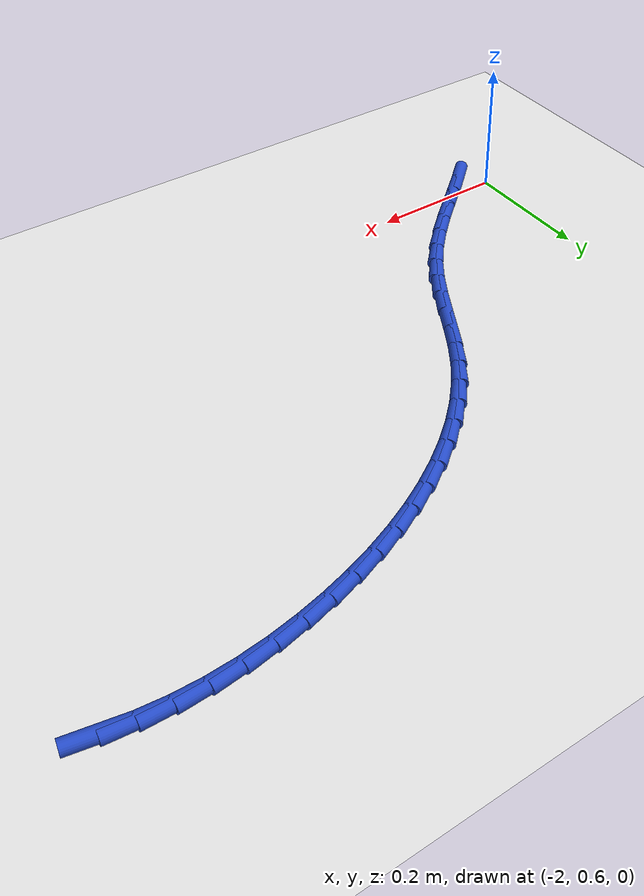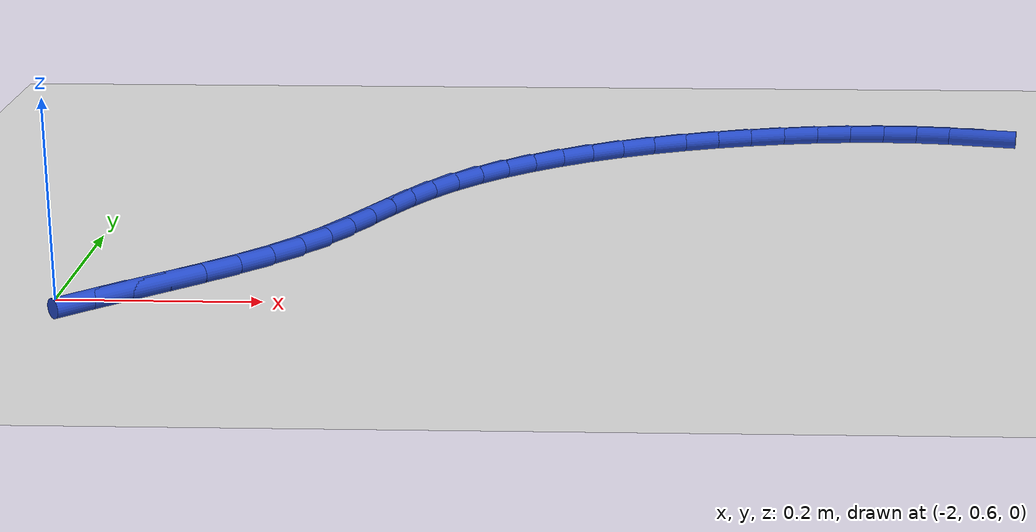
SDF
<sdf version="1.6">
 <world name="default">
  <model name="ground_plane">
   <static>1</static>
   <link name="link">
    <collision name="collision">
     <geometry><plane><normal>0 0 1</normal><size>100 100</size></plane></geometry>
     <surface><friction><ode><mu>100</mu><mu2>50</mu2></ode></friction></surface>
    </collision>
    <visual name="visual">
     <cast_shadows>0</cast_shadows>
     <geometry><plane><normal>0 0 1</normal><size>100 100</size></plane></geometry>
     <material>
      <script><uri>file://media/materials/scripts/gazebo.material</uri><name>Gazebo/WhiteGlow</name></script>
     </material>
    </visual>
   </link>
  </model>
  <model name="line">
   <link name="link_43">
    <pose>-1.0375401888467142 1.17692421562285 0.01 0 1.57 -0.19926425194213804</pose>
    <collision name="collision">
     <geometry><cylinder><radius>0.01</radius><length>0.08</length></cylinder></geometry>
    </collision>
    <visual name="visual">
     <material>
      <script><name>Gazebo/Blue</name><uri>file://media/materials/scripts/gazebo.material</uri></script>
     </material>
     <geometry><cylinder><radius>0.01</radius><length>0.08</length></cylinder></geometry>
    </visual>
   </link>
   <link name="link_44">
    <pose>-1.075025621205614 1.1844941800970346 0.01 0 1.57 -0.11313000391877812</pose>
    <collision name="collision">
     <geometry><cylinder><radius>0.01</radius><length>0.08</length></cylinder></geometry>
    </collision>
    <visual name="visual">
     <material>
      <script><name>Gazebo/Blue</name><uri>file://media/materials/scripts/gazebo.material</uri></script>
     </material>
     <geometry><cylinder><radius>0.01</radius><length>0.08</length></cylinder></geometry>
    </visual>
   </link>
   <link name="link_45">
    <pose>-1.1136404835672107 1.1888814121298201 0.01 0 1.57 -0.035319230790393445</pose>
    <collision name="collision">
     <geometry><cylinder><radius>0.01</radius><length>0.08</length></cylinder></geometry>
    </collision>
    <visual name="visual">
     <material>
      <script><name>Gazebo/Blue</name><uri>file://media/materials/scripts/gazebo.material</uri></script>
     </material>
     <geometry><cylinder><radius>0.01</radius><length>0.08</length></cylinder></geometry>
    </visual>
   </link>
   <link name="link_46">
    <pose>-1.1530976726064388 1.1902755894653265 0.01 0 1.57 0.035204510748973315</pose>
    <collision name="collision">
     <geometry><cylinder><radius>0.01</radius><length>0.08</length></cylinder></geometry>
    </collision>
    <visual name="visual">
     <material>
      <script><name>Gazebo/Blue</name><uri>file://media/materials/scripts/gazebo.material</uri></script>
     </material>
     <geometry><cylinder><radius>0.01</radius><length>0.08</length></cylinder></geometry>
    </visual>
   </link>
   <link name="link_47">
    <pose>-1.193110084998232 1.1888663898476728 0.01 0 1.57 0.0995419549093709</pose>
    <collision name="collision">
     <geometry><cylinder><radius>0.01</radius><length>0.08</length></cylinder></geometry>
    </collision>
    <visual name="visual">
     <material>
      <script><name>Gazebo/Blue</name><uri>file://media/materials/scripts/gazebo.material</uri></script>
     </material>
     <geometry><cylinder><radius>0.01</radius><length>0.08</length></cylinder></geometry>
    </visual>
   </link>
   <link name="link_48">
    <pose>-1.2333906174175235 1.1848434910209773 0.01 0 1.57 0.15877810201861178</pose>
    <collision name="collision">
     <geometry><cylinder><radius>0.01</radius><length>0.08</length></cylinder></geometry>
    </collision>
    <visual name="visual">
     <material>
      <script><name>Gazebo/Blue</name><uri>file://media/materials/scripts/gazebo.material</uri></script>
     </material>
     <geometry><cylinder><radius>0.01</radius><length>0.08</length></cylinder></geometry>
    </visual>
   </link>
   <link name="link_49">
    <pose>-1.2736521665392488 1.17839657072936 0.01 0 1.57 0.2139482124098432</pose>
    <collision name="collision">
     <geometry><cylinder><radius>0.01</radius><length>0.08</length></cylinder></geometry>
    </collision>
    <visual name="visual">
     <material>
      <script><name>Gazebo/Blue</name><uri>file://media/materials/scripts/gazebo.material</uri></script>
     </material>
     <geometry><cylinder><radius>0.01</radius><length>0.08</length></cylinder></geometry>
    </visual>
   </link>
   <link name="link_50">
    <pose>-1.31360762903834 1.1697153067169397 0.01 0 1.57 0.26650997834012896</pose>
    <collision name="collision">
     <geometry><cylinder><radius>0.01</radius><length>0.08</length></cylinder></geometry>
    </collision>
    <visual name="visual">
     <material>
      <script><name>Gazebo/Blue</name><uri>file://media/materials/scripts/gazebo.material</uri></script>
     </material>
     <geometry><cylinder><radius>0.01</radius><length>0.08</length></cylinder></geometry>
    </visual>
   </link>
   <link name="link_51">
    <pose>-1.3529826562256022 1.1589657507992683 0.01 0 1.57 0.31961463470445206</pose>
    <collision name="collision">
     <geometry><cylinder><radius>0.01</radius><length>0.08</length></cylinder></geometry>
    </collision>
    <visual name="visual">
     <material>
      <script><name>Gazebo/Blue</name><uri>file://media/materials/scripts/gazebo.material</uri></script>
     </material>
     <geometry><cylinder><radius>0.01</radius><length>0.08</length></cylinder></geometry>
    </visual>
   </link>
   <link name="link_52">
    <pose>-1.3915666126840012 1.1461959361175709 0.01 0 1.57 0.3744847786997875</pose>
    <collision name="collision">
     <geometry><cylinder><radius>0.01</radius><length>0.08</length></cylinder></geometry>
    </collision>
    <visual name="visual">
     <material>
      <script><name>Gazebo/Blue</name><uri>file://media/materials/scripts/gazebo.material</uri></script>
     </material>
     <geometry><cylinder><radius>0.01</radius><length>0.08</length></cylinder></geometry>
    </visual>
   </link>
   <link name="link_53">
    <pose>-1.4291687171838194 1.1314171190978346 0.01 0 1.57 0.43156946655705075</pose>
    <collision name="collision">
     <geometry><cylinder><radius>0.01</radius><length>0.08</length></cylinder></geometry>
    </collision>
    <visual name="visual">
     <material>
      <script><name>Gazebo/Blue</name><uri>file://media/materials/scripts/gazebo.material</uri></script>
     </material>
     <geometry><cylinder><radius>0.01</radius><length>0.08</length></cylinder></geometry>
    </visual>
   </link>
   <link name="link_54">
    <pose>-1.4655981949578503 1.11464054419528 0.01 0 1.57 0.4913146990866038</pose>
    <collision name="collision">
     <geometry><cylinder><radius>0.01</radius><length>0.08</length></cylinder></geometry>
    </collision>
    <visual name="visual">
     <material>
      <script><name>Gazebo/Blue</name><uri>file://media/materials/scripts/gazebo.material</uri></script>
     </material>
     <geometry><cylinder><radius>0.01</radius><length>0.08</length></cylinder></geometry>
    </visual>
   </link>
   <link name="link_55">
    <pose>-1.5006642712388876 1.0958774558651274 0.01 0 1.57 0.5541542140938653</pose>
    <collision name="collision">
     <geometry><cylinder><radius>0.01</radius><length>0.08</length></cylinder></geometry>
    </collision>
    <visual name="visual">
     <material>
      <script><name>Gazebo/Blue</name><uri>file://media/materials/scripts/gazebo.material</uri></script>
     </material>
     <geometry><cylinder><radius>0.01</radius><length>0.08</length></cylinder></geometry>
    </visual>
   </link>
   <link name="link_56">
    <pose>-1.5341761712597228 1.0751390985625968 0.01 0 1.57 0.6204934053421207</pose>
    <collision name="collision">
     <geometry><cylinder><radius>0.01</radius><length>0.08</length></cylinder></geometry>
    </collision>
    <visual name="visual">
     <material>
      <script><name>Gazebo/Blue</name><uri>file://media/materials/scripts/gazebo.material</uri></script>
     </material>
     <geometry><cylinder><radius>0.01</radius><length>0.08</length></cylinder></geometry>
    </visual>
   </link>
   <link name="link_57">
    <pose>-1.56594312025315 1.0524367167429085 0.01 0 1.57 0.6906850596506369</pose>
    <collision name="collision">
     <geometry><cylinder><radius>0.01</radius><length>0.08</length></cylinder></geometry>
    </collision>
    <visual name="visual">
     <material>
      <script><name>Gazebo/Blue</name><uri>file://media/materials/scripts/gazebo.material</uri></script>
     </material>
     <geometry><cylinder><radius>0.01</radius><length>0.08</length></cylinder></geometry>
    </visual>
   </link>
   <link name="link_58">
    <pose>-1.5957743434519618 1.027781554861283 0.01 0 1.57 0.7649959086756521</pose>
    <collision name="collision">
     <geometry><cylinder><radius>0.01</radius><length>0.08</length></cylinder></geometry>
    </collision>
    <visual name="visual">
     <material>
      <script><name>Gazebo/Blue</name><uri>file://media/materials/scripts/gazebo.material</uri></script>
     </material>
     <geometry><cylinder><radius>0.01</radius><length>0.08</length></cylinder></geometry>
    </visual>
   </link>
   <link name="link_59">
    <pose>-1.6234790660889502 1.0011848573729405 0.01 0 1.57 0.8435644002538337</pose>
    <collision name="collision">
     <geometry><cylinder><radius>0.01</radius><length>0.08</length></cylinder></geometry>
    </collision>
    <visual name="visual">
     <material>
      <script><name>Gazebo/Blue</name><uri>file://media/materials/scripts/gazebo.material</uri></script>
     </material>
     <geometry><cylinder><radius>0.01</radius><length>0.08</length></cylinder></geometry>
    </visual>
   </link>
   <link name="link_60">
    <pose>-1.6488665133969096 0.9726578687331009 0.01 0 1.57 0.9263526668702404</pose>
    <collision name="collision">
     <geometry><cylinder><radius>0.01</radius><length>0.08</length></cylinder></geometry>
    </collision>
    <visual name="visual">
     <material>
      <script><name>Gazebo/Blue</name><uri>file://media/materials/scripts/gazebo.material</uri></script>
     </material>
     <geometry><cylinder><radius>0.01</radius><length>0.08</length></cylinder></geometry>
    </visual>
   </link>
   <link name="link_61">
    <pose>-1.6717459106086312 0.9422118333969852 0.01 0 1.57 1.0075000632424655</pose>
    <collision name="collision">
     <geometry><cylinder><radius>0.01</radius><length>0.08</length></cylinder></geometry>
    </collision>
    <visual name="visual">
     <material>
      <script><name>Gazebo/Blue</name><uri>file://media/materials/scripts/gazebo.material</uri></script>
     </material>
     <geometry><cylinder><radius>0.01</radius><length>0.08</length></cylinder></geometry>
    </visual>
   </link>
   <link name="link_62">
    <pose>-1.6921159861635364 0.9099577851358764 0.01 0 1.57 1.0634153610228012</pose>
    <collision name="collision">
     <geometry><cylinder><radius>0.01</radius><length>0.08</length></cylinder></geometry>
    </collision>
    <visual name="visual">
     <material>
      <script><name>Gazebo/Blue</name><uri>file://media/materials/scripts/gazebo.material</uri></script>
     </material>
     <geometry><cylinder><radius>0.01</radius><length>0.08</length></cylinder></geometry>
    </visual>
   </link>
   <link name="link_63">
    <pose>-1.71076042932323 0.876420105362906 0.01 0 1.57 1.0883585617829186</pose>
    <collision name="collision">
     <geometry><cylinder><radius>0.01</radius><length>0.08</length></cylinder></geometry>
    </collision>
    <visual name="visual">
     <material>
      <script><name>Gazebo/Blue</name><uri>file://media/materials/scripts/gazebo.material</uri></script>
     </material>
     <geometry><cylinder><radius>0.01</radius><length>0.08</length></cylinder></geometry>
    </visual>
   </link>
   <link name="link_64">
    <pose>-1.728666144341941 0.8422301852114578 0.01 0 1.57 1.0829316426552231</pose>
    <collision name="collision">
     <geometry><cylinder><radius>0.01</radius><length>0.08</length></cylinder></geometry>
    </collision>
    <visual name="visual">
     <material>
      <script><name>Gazebo/Blue</name><uri>file://media/materials/scripts/gazebo.material</uri></script>
     </material>
     <geometry><cylinder><radius>0.01</radius><length>0.08</length></cylinder></geometry>
    </visual>
   </link>
   <link name="link_65">
    <pose>-1.7468200357837422 0.8080194159780715 0.01 0 1.57 1.0474236435754225</pose>
    <collision name="collision">
     <geometry><cylinder><radius>0.01</radius><length>0.08</length></cylinder></geometry>
    </collision>
    <visual name="visual">
     <material>
      <script><name>Gazebo/Blue</name><uri>file://media/materials/scripts/gazebo.material</uri></script>
     </material>
     <geometry><cylinder><radius>0.01</radius><length>0.08</length></cylinder></geometry>
    </visual>
   </link>
   <link name="link_66">
    <pose>-1.7662090082127027 0.774419188959286 0.01 0 1.57 0.9819648597125538</pose>
    <collision name="collision">
     <geometry><cylinder><radius>0.01</radius><length>0.08</length></cylinder></geometry>
    </collision>
    <visual name="visual">
     <material>
      <script><name>Gazebo/Blue</name><uri>file://media/materials/scripts/gazebo.material</uri></script>
     </material>
     <geometry><cylinder><radius>0.01</radius><length>0.08</length></cylinder></geometry>
    </visual>
   </link>
   <link name="link_67">
    <pose>-1.7878199661928926 0.7420608954516416 0.01 0 1.57 0.894094415736364</pose>
    <collision name="collision">
     <geometry><cylinder><radius>0.01</radius><length>0.08</length></cylinder></geometry>
    </collision>
    <visual name="visual">
     <material>
      <script><name>Gazebo/Blue</name><uri>file://media/materials/scripts/gazebo.material</uri></script>
     </material>
     <geometry><cylinder><radius>0.01</radius><length>0.08</length></cylinder></geometry>
    </visual>
   </link>
   <link name="link_68">
    <pose>-1.812412441832844 0.7114435756504468 0.01 0 1.57 0.8183840238640808</pose>
    <collision name="collision">
     <geometry><cylinder><radius>0.01</radius><length>0.08</length></cylinder></geometry>
    </collision>
    <visual name="visual">
     <material>
      <script><name>Gazebo/Blue</name><uri>file://media/materials/scripts/gazebo.material</uri></script>
     </material>
     <geometry><cylinder><radius>0.01</radius><length>0.08</length></cylinder></geometry>
    </visual>
   </link>
   <link name="link_69">
    <pose>-1.839600796966233 0.6823996782475864 0.01 0 1.57 0.7644568316218366</pose>
    <collision name="collision">
     <geometry><cylinder><radius>0.01</radius><length>0.08</length></cylinder></geometry>
    </collision>
    <visual name="visual">
     <material>
      <script><name>Gazebo/Blue</name><uri>file://media/materials/scripts/gazebo.material</uri></script>
     </material>
     <geometry><cylinder><radius>0.01</radius><length>0.08</length></cylinder></geometry>
    </visual>
   </link>
   <link name="link_70">
    <pose>-1.8686396657638569 0.6545522582675709 0.01 0 1.57 0.7309510090940847</pose>
    <collision name="collision">
     <geometry><cylinder><radius>0.01</radius><length>0.08</length></cylinder></geometry>
    </collision>
    <visual name="visual">
     <material>
      <script><name>Gazebo/Blue</name><uri>file://media/materials/scripts/gazebo.material</uri></script>
     </material>
     <geometry><cylinder><radius>0.01</radius><length>0.08</length></cylinder></geometry>
    </visual>
   </link>
   <link name="link_71">
    <pose>-1.8987835528806638 0.6275242953451042 0.01 0 1.57 0.7168778744353141</pose>
    <collision name="collision">
     <geometry><cylinder><radius>0.01</radius><length>0.08</length></cylinder></geometry>
    </collision>
    <visual name="visual">
     <material>
      <script><name>Gazebo/Blue</name><uri>file://media/materials/scripts/gazebo.material</uri></script>
     </material>
     <geometry><cylinder><radius>0.01</radius><length>0.08</length></cylinder></geometry>
    </visual>
   </link>
   <link name="link_72">
    <pose>-1.929286962971602 0.6009387691148912 0.01 0 1.57 0.7219684729193467</pose>
    <collision name="collision">
     <geometry><cylinder><radius>0.01</radius><length>0.08</length></cylinder></geometry>
    </collision>
    <visual name="visual">
     <material>
      <script><name>Gazebo/Blue</name><uri>file://media/materials/scripts/gazebo.material</uri></script>
     </material>
     <geometry><cylinder><radius>0.01</radius><length>0.08</length></cylinder></geometry>
    </visual>
   </link>
   <link name="link_73">
    <pose>-1.9594044006916203 0.5744186592116359 0.01 0 1.57 0.7468228006962894</pose>
    <collision name="collision">
     <geometry><cylinder><radius>0.01</radius><length>0.08</length></cylinder></geometry>
    </collision>
    <visual name="visual">
     <material>
      <script><name>Gazebo/Blue</name><uri>file://media/materials/scripts/gazebo.material</uri></script>
     </material>
     <geometry><cylinder><radius>0.01</radius><length>0.08</length></cylinder></geometry>
    </visual>
   </link>
  </model>
 </world>
</sdf>
